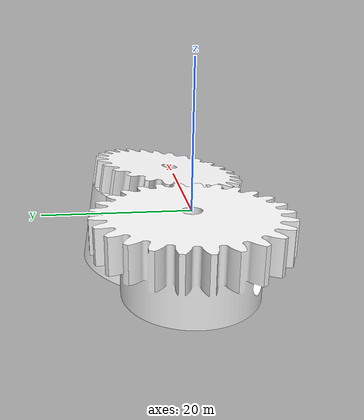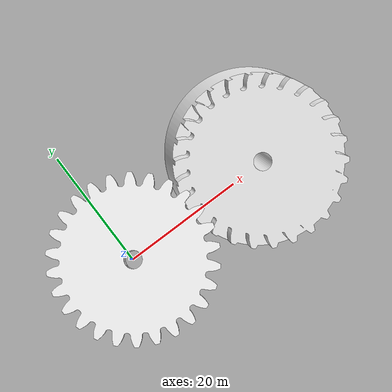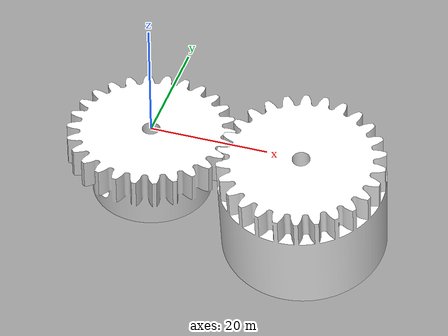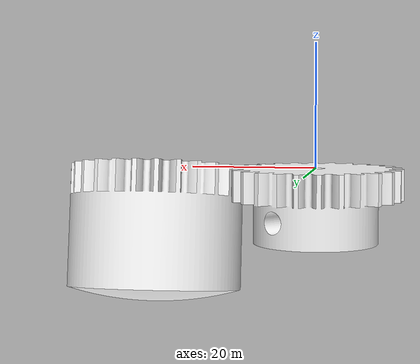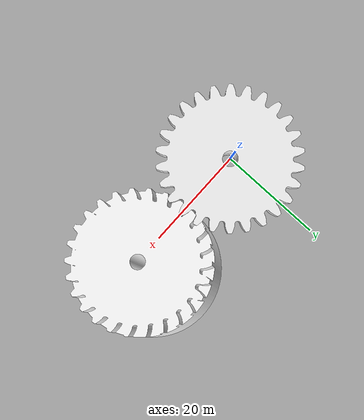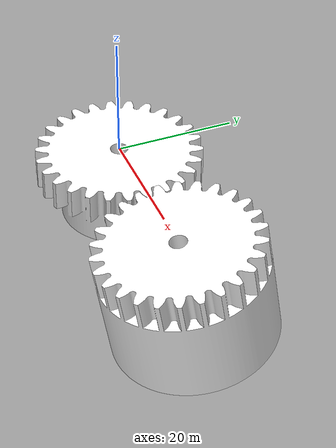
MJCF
<?xml version="1.0"?>
<mujoco model="test">
  <default>
    <default class="visual">
      <geom group="2" type="mesh" contype="0" conaffinity="0"/>
    </default>
    <default class="collision">
      <geom group="3" type="mesh"/>
    </default>
  </default>
  <asset>
    <mesh file="FabConvert.com_gear_1.obj"/>
    <mesh file="FabConvert.com_gear_2.obj"/>
  </asset>
  <worldbody>
    <body name="FabConvert.com_gear_1">
      <geom type="mesh" mesh="FabConvert.com_gear_1" class="visual" quat="0.0 1.0 0.0 0.0" pos="0.0 0.0 0.0"  rgba="1.0 1.0 1.0 1.0"/>
      <geom type="mesh" mesh="FabConvert.com_gear_1" class="collision" quat="0.0 1.0 0.0 0.0" pos="0.0 0.0 0.0" />
    </body>
    <body name="FabConvert.com_gear_2">
      <geom type="mesh" mesh="FabConvert.com_gear_2" class="visual" quat="0.08081357926130295 -0.9954349994659424 -0.050679851323366165 -0.0031474430579692125" pos="25.889986038208008 0.0 0.0"  rgba="1.0 1.0 1.0 1.0"/>
      <geom type="mesh" mesh="FabConvert.com_gear_2" class="collision" quat="0.08081357926130295 -0.9954349994659424 -0.050679851323366165 -0.0031474430579692125" pos="25.889986038208008 0.0 0.0" />
    </body>
  </worldbody>
  <actuator>
  </actuator>
  <tendon>
  </tendon>
</mujoco>
